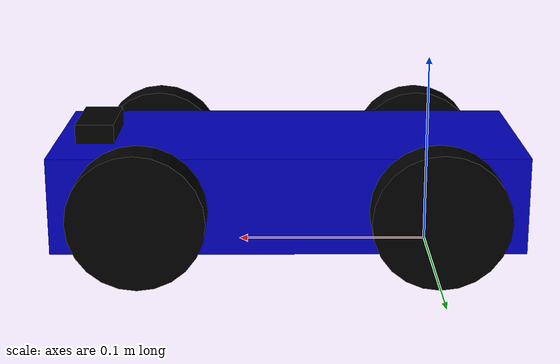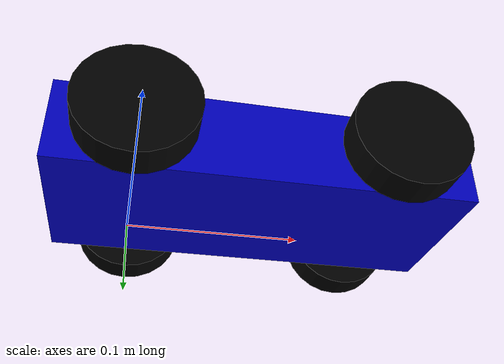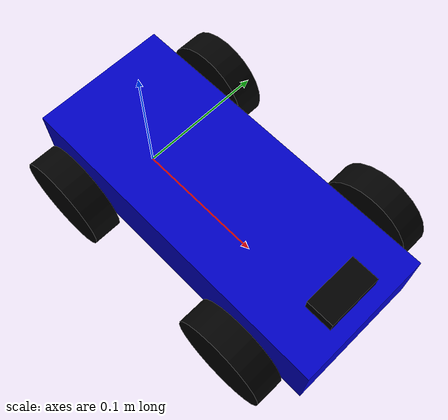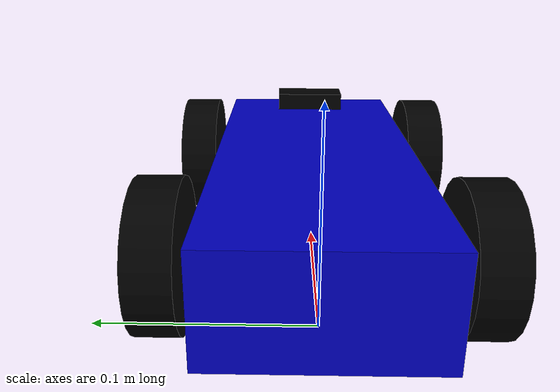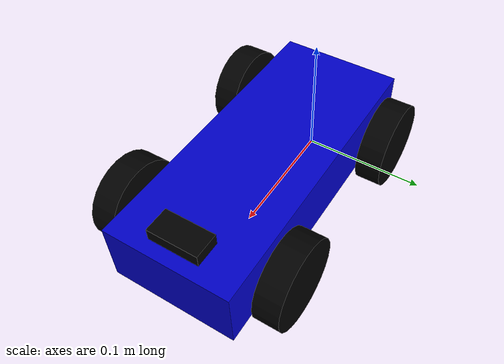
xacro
<?xml version="1.0"?>
<robot name="jetson_car" xmlns:xacro="http://www.ros.org/wiki/xacro">

  <xacro:arg name="use_sim" default="false" />

  <xacro:include filename="jetson_car_core.xacro" />

  <xacro:include filename="jetson_car.ros2_control.xacro" />
  <xacro:jetson_car_ros2_control use_sim="$(arg use_sim)" />

  <xacro:if value="$(arg use_sim)">
    <gazebo>
      <plugin filename="libgz_ros2_control-system.so" name="gz_ros2_control::GazeboSimROS2ControlPlugin">
        <parameters>$(find vehicle_hardware)/config/controllers.yaml</parameters>
        <ros>
        <remapping>/ackermann_steering_controller/reference_unstamped:=/ackermann_steering_controller/cmd_vel</remapping>
        </ros>
      </plugin>

      <plugin filename="libignition-gazebo-odometry-publisher-system.so" name="ignition::gazebo::systems::OdometryPublisher">
        <odom_frame>odom</odom_frame>
        <robot_base_frame>base_link</robot_base_frame>
        <odom_topic>/model/jetson_car/ground_truth</odom_topic>
        <odom_publish_frequency>50</odom_publish_frequency>
        <dimensions>3</dimensions>
      </plugin>
    </gazebo>
  </xacro:if>

</robot>

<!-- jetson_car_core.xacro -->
<robot xmlns:xacro="http://www.ros.org/wiki/xacro">

  <material name="blue"><color rgba="0 0 0.8 1"/></material>
  <material name="black"><color rgba="0 0 0 1"/></material>

  <link name="base_link">
  </link>

  <link name="chassis">
    <visual>
      <origin xyz="0.074 0 0.034" rpy="0 0 0"/>
      <geometry><box size="0.2413 0.10 0.05"/></geometry>
      <material name="blue"/>
    </visual>
    <collision>
      <origin xyz="0.074 0 0.034" rpy="0 0 0"/>
      <geometry><box size="0.2413 0.10 0.05"/></geometry>
    </collision>
    <inertial>
      <origin xyz="0.074 0 0.034" rpy="0 0 0"/>
      <mass value="1.0"/>
      <inertia ixx="0.001" ixy="0" ixz="0" iyy="0.003" iyz="0" izz="0.004"/>
    </inertial>
  </link>
  <joint name="base_to_chassis" type="fixed">
    <parent link="base_link"/>
    <child link="chassis"/>
  </joint>

  <link name="rear_left_wheel">
    <visual><origin xyz="0 0 0" rpy="1.5708 0 0"/><geometry><cylinder radius="0.034" length="0.02"/></geometry><material name="black"/></visual>
    <collision><origin xyz="0 0 0" rpy="1.5708 0 0"/><geometry><cylinder radius="0.034" length="0.02"/></geometry></collision>
    <inertial><mass value="0.1"/><inertia ixx="0.00003" ixy="0" ixz="0" iyy="0.00003" iyz="0" izz="0.00006"/></inertial>
  </link>
  <joint name="rl_wheel_joint" type="continuous">
    <parent link="base_link"/>
    <child link="rear_left_wheel"/>
    <origin xyz="0 0.0665 0.034" rpy="0 0 0"/>
    <axis xyz="0 1 0"/>
  </joint>

  <link name="rear_right_wheel">
    <visual><origin xyz="0 0 0" rpy="1.5708 0 0"/><geometry><cylinder radius="0.034" length="0.02"/></geometry><material name="black"/></visual>
    <collision><origin xyz="0 0 0" rpy="1.5708 0 0"/><geometry><cylinder radius="0.034" length="0.02"/></geometry></collision>
    <inertial><mass value="0.1"/><inertia ixx="0.00003" ixy="0" ixz="0" iyy="0.00003" iyz="0" izz="0.00006"/></inertial>
  </link>
  <joint name="rr_wheel_joint" type="continuous">
    <parent link="base_link"/>
    <child link="rear_right_wheel"/>
    <origin xyz="0 -0.0665 0.034" rpy="0 0 0"/>
    <axis xyz="0 1 0"/>
  </joint>

  <link name="fl_steering_hinge">
    <inertial><mass value="0.05"/><inertia ixx="0.00001" ixy="0" ixz="0" iyy="0.00001" iyz="0" izz="0.00001"/></inertial>
  </link>
  <joint name="fl_steering_joint" type="revolute">
    <parent link="base_link"/>
    <child link="fl_steering_hinge"/>
    <origin xyz="0.148 0.0665 0.034" rpy="0 0 0"/>
    <axis xyz="0 0 1"/>
    <limit lower="-0.785" upper="0.785" effort="10.0" velocity="5.0"/>
  </joint>

  <link name="front_left_wheel">
    <visual><origin xyz="0 0 0" rpy="1.5708 0 0"/><geometry><cylinder radius="0.034" length="0.02"/></geometry><material name="black"/></visual>
    <collision><origin xyz="0 0 0" rpy="1.5708 0 0"/><geometry><cylinder radius="0.034" length="0.02"/></geometry></collision>
    <inertial><mass value="0.1"/><inertia ixx="0.00003" ixy="0" ixz="0" iyy="0.00003" iyz="0" izz="0.00006"/></inertial>
  </link>
  <joint name="fl_wheel_joint" type="continuous">
    <parent link="fl_steering_hinge"/>
    <child link="front_left_wheel"/>
    <origin xyz="0 0 0" rpy="0 0 0"/>
    <axis xyz="0 1 0"/>
  </joint>

  <link name="fr_steering_hinge">
    <inertial><mass value="0.05"/><inertia ixx="0.00001" ixy="0" ixz="0" iyy="0.00001" iyz="0" izz="0.00001"/></inertial>
  </link>
  <joint name="fr_steering_joint" type="revolute">
    <parent link="base_link"/>
    <child link="fr_steering_hinge"/>
    <origin xyz="0.148 -0.0665 0.034" rpy="0 0 0"/>
    <axis xyz="0 0 1"/>
    <limit lower="-0.785" upper="0.785" effort="10.0" velocity="5.0"/>
  </joint>

  <link name="front_right_wheel">
    <visual><origin xyz="0 0 0" rpy="1.5708 0 0"/><geometry><cylinder radius="0.034" length="0.02"/></geometry><material name="black"/></visual>
    <collision><origin xyz="0 0 0" rpy="1.5708 0 0"/><geometry><cylinder radius="0.034" length="0.02"/></geometry></collision>
    <inertial><mass value="0.1"/><inertia ixx="0.00003" ixy="0" ixz="0" iyy="0.00003" iyz="0" izz="0.00006"/></inertial>
  </link>
  <joint name="fr_wheel_joint" type="continuous">
    <parent link="fr_steering_hinge"/>
    <child link="front_right_wheel"/>
    <origin xyz="0 0 0" rpy="0 0 0"/>
    <axis xyz="0 1 0"/>
  </joint>

  <link name="camera_link">
    <visual>
      <origin xyz="0 0 0" rpy="0 0 0"/>
      <geometry><box size="0.02 0.04 0.02"/></geometry>
      <material name="black"/>
    </visual>
  </link>
  <joint name="camera_joint" type="fixed">
    <parent link="base_link"/>
    <child link="camera_link"/>
    <origin xyz="0.174 0 0.0587" rpy="0 0 0"/>
  </joint>

  <gazebo reference="camera_link">
    <sensor name="lane_camera" type="camera">
      <pose>0 0 0 0 0 0</pose>
      <always_on>1</always_on>
      <update_rate>60</update_rate>
      <camera>
        <horizontal_fov>1.1</horizontal_fov>
        <image><width>1280</width><height>720</height></image>
        <clip><near>0.1</near><far>100</far></clip>
      </camera>
      <topic>/camera/lane/raw_video</topic>
    </sensor>
  </gazebo>

</robot>
